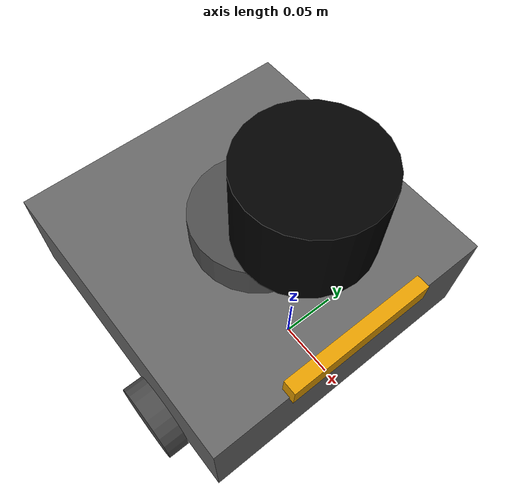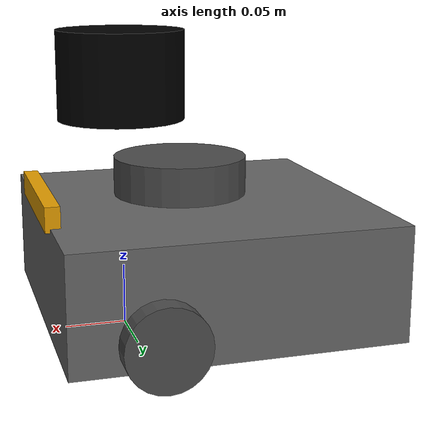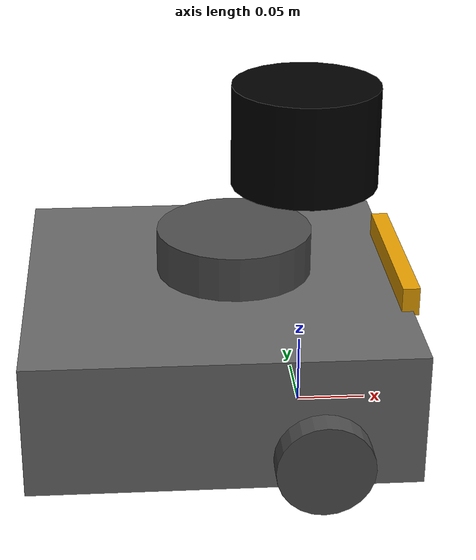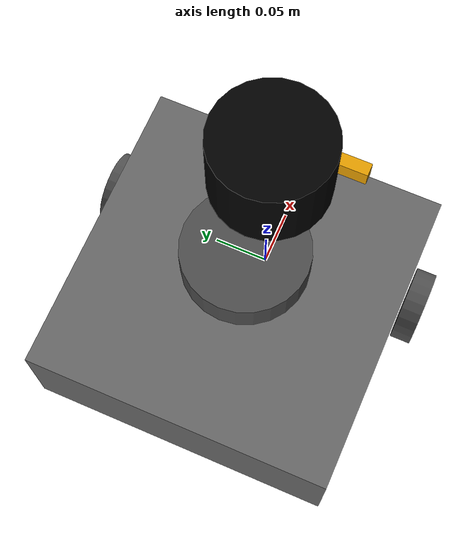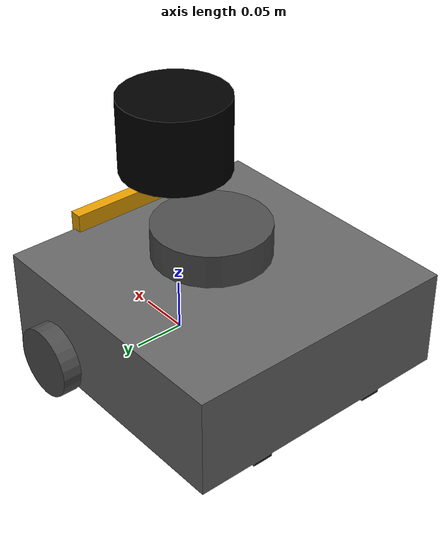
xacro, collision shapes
<?xml version="1.0" ?>
<robot name="turtlebot3_waffle_3d" xmlns:xacro="http://ros.org/wiki/xacro">

  <!-- Standard waffle body (links, wheels, 2D scan, camera, imu frames) -->
  <xacro:include filename="$(find turtlebot3_description)/urdf/turtlebot3_waffle.urdf"/>

  <!-- 3D LiDAR frame, mounted on top of base_link (matches model.sdf pose) -->
  <joint name="lidar_joint" type="fixed">
    <origin xyz="0 0 0.20" rpy="0 0 0"/>
    <parent link="base_link"/>
    <child link="lidar_link"/>
  </joint>

  <link name="lidar_link">
    <visual>
      <origin xyz="0 0 0" rpy="0 0 0"/>
      <geometry>
        <cylinder radius="0.0516" length="0.0717"/>
      </geometry>
      <material name="black"/>
    </visual>
    <collision>
      <origin xyz="0 0 0" rpy="0 0 0"/>
      <geometry>
        <cylinder radius="0.0516" length="0.0717"/>
      </geometry>
    </collision>
    <inertial>
      <mass value="0.83"/>
      <origin xyz="0 0 0"/>
      <inertia ixx="0.001" ixy="0.0" ixz="0.0"
               iyy="0.001" iyz="0.0" izz="0.001"/>
    </inertial>
  </link>

  <!-- 360-degree RGB rig frame (matches model.sdf). The six face frames are
       published for calibration bookkeeping; omni_image_node.py stitches their
       images into one equirectangular image. -->
  <joint name="omni_camera_joint" type="fixed">
    <origin xyz="0 0 0.75" rpy="0 0 0"/>
    <parent link="base_link"/>
    <child link="omni_camera_link"/>
  </joint>

  <link name="omni_camera_link">
    <visual>
      <geometry>
        <sphere radius="0.045"/>
      </geometry>
      <material name="black"/>
    </visual>
    <inertial>
      <mass value="0.12"/>
      <origin xyz="0 0 0"/>
      <inertia ixx="0.0002" ixy="0" ixz="0"
               iyy="0.0002" iyz="0" izz="0.0002"/>
    </inertial>
  </link>

  <joint name="omni_front_joint" type="fixed">
    <origin xyz="0 0 0" rpy="0 0 0"/>
    <parent link="omni_camera_link"/>
    <child link="omni_front_frame"/>
  </joint>
  <link name="omni_front_frame"/>

  <joint name="omni_left_joint" type="fixed">
    <origin xyz="0 0 0" rpy="0 0 1.57079632679"/>
    <parent link="omni_camera_link"/>
    <child link="omni_left_frame"/>
  </joint>
  <link name="omni_left_frame"/>

  <joint name="omni_back_joint" type="fixed">
    <origin xyz="0 0 0" rpy="0 0 3.14159265359"/>
    <parent link="omni_camera_link"/>
    <child link="omni_back_frame"/>
  </joint>
  <link name="omni_back_frame"/>

  <joint name="omni_right_joint" type="fixed">
    <origin xyz="0 0 0" rpy="0 0 -1.57079632679"/>
    <parent link="omni_camera_link"/>
    <child link="omni_right_frame"/>
  </joint>
  <link name="omni_right_frame"/>

  <joint name="omni_up_joint" type="fixed">
    <origin xyz="0 0 0" rpy="0 -1.57079632679 0"/>
    <parent link="omni_camera_link"/>
    <child link="omni_up_frame"/>
  </joint>
  <link name="omni_up_frame"/>

  <joint name="omni_down_joint" type="fixed">
    <origin xyz="0 0 0" rpy="0 1.57079632679 0"/>
    <parent link="omni_camera_link"/>
    <child link="omni_down_frame"/>
  </joint>
  <link name="omni_down_frame"/>

</robot>

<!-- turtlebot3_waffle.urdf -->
<!-- |    This document was autogenerated by xacro from urdf/turtlebot3_waffle.urdf.xacro | -->
<!-- |    EDITING THIS FILE BY HAND IS NOT RECOMMENDED                                 | -->
<robot name="turtlebot3_waffle">
  <!-- Init colour -->
  <material name="black">
    <color rgba="0.0 0.0 0.0 1.0"/>
  </material>
  <material name="dark">
    <color rgba="0.3 0.3 0.3 1.0"/>
  </material>
  <material name="light_black">
    <color rgba="0.4 0.4 0.4 1.0"/>
  </material>
  <material name="blue">
    <color rgba="0.0 0.0 0.8 1.0"/>
  </material>
  <material name="green">
    <color rgba="0.0 0.8 0.0 1.0"/>
  </material>
  <material name="grey">
    <color rgba="0.5 0.5 0.5 1.0"/>
  </material>
  <material name="orange">
    <color rgba="1.0 0.4235294117647059 0.0392156862745098 1.0"/>
  </material>
  <material name="brown">
    <color rgba="0.8705882352941177 0.8117647058823529 0.7647058823529411 1.0"/>
  </material>
  <material name="red">
    <color rgba="0.8 0.0 0.0 1.0"/>
  </material>
  <material name="white">
    <color rgba="1.0 1.0 1.0 1.0"/>
  </material>
  <gazebo reference="base_link">
    <material>Gazebo/DarkGrey</material>
  </gazebo>
  <gazebo reference="wheel_left_link">
    <mu1>0.1</mu1>
    <mu2>0.1</mu2>
    <kp>500000.0</kp>
    <kd>10.0</kd>
    <minDepth>0.001</minDepth>
    <maxVel>0.1</maxVel>
    <fdir1>1 0 0</fdir1>
    <material>Gazebo/FlatBlack</material>
  </gazebo>
  <gazebo reference="wheel_right_link">
    <mu1>0.1</mu1>
    <mu2>0.1</mu2>
    <kp>500000.0</kp>
    <kd>10.0</kd>
    <minDepth>0.001</minDepth>
    <maxVel>0.1</maxVel>
    <fdir1>1 0 0</fdir1>
    <material>Gazebo/FlatBlack</material>
  </gazebo>
  <gazebo reference="caster_back_right_link">
    <mu1>0.1</mu1>
    <mu2>0.1</mu2>
    <kp>1000000.0</kp>
    <kd>100.0</kd>
    <minDepth>0.001</minDepth>
    <maxVel>1.0</maxVel>
    <material>Gazebo/FlatBlack</material>
  </gazebo>
  <gazebo reference="caster_back_left_link">
    <mu1>0.1</mu1>
    <mu2>0.1</mu2>
    <kp>1000000.0</kp>
    <kd>100.0</kd>
    <minDepth>0.001</minDepth>
    <maxVel>1.0</maxVel>
    <material>Gazebo/FlatBlack</material>
  </gazebo>
  <gazebo reference="imu_link">
    <sensor name="imu" type="imu">
      <always_on>true</always_on>
      <visualize>false</visualize>
    </sensor>
    <material>Gazebo/Grey</material>
  </gazebo>
  <gazebo>
    <plugin filename="libgazebo_ros_diff_drive.so" name="turtlebot3_waffle_controller">
      <commandTopic>cmd_vel</commandTopic>
      <odometryTopic>odom</odometryTopic>
      <odometryFrame>odom</odometryFrame>
      <odometrySource>world</odometrySource>
      <publishOdomTF>true</publishOdomTF>
      <robotBaseFrame>base_footprint</robotBaseFrame>
      <publishWheelTF>false</publishWheelTF>
      <publishTf>true</publishTf>
      <publishWheelJointState>true</publishWheelJointState>
      <legacyMode>false</legacyMode>
      <updateRate>30</updateRate>
      <leftJoint>wheel_left_joint</leftJoint>
      <rightJoint>wheel_right_joint</rightJoint>
      <wheelSeparation>0.287</wheelSeparation>
      <wheelDiameter>0.066</wheelDiameter>
      <wheelAcceleration>1</wheelAcceleration>
      <wheelTorque>10</wheelTorque>
      <rosDebugLevel>na</rosDebugLevel>
    </plugin>
  </gazebo>
  <gazebo>
    <plugin filename="libgazebo_ros_imu.so" name="imu_plugin">
      <alwaysOn>true</alwaysOn>
      <bodyName>imu_link</bodyName>
      <frameName>imu_link</frameName>
      <topicName>imu</topicName>
      <serviceName>imu_service</serviceName>
      <gaussianNoise>0.0</gaussianNoise>
      <updateRate>0</updateRate>
      <imu>
        <noise>
          <type>gaussian</type>
          <rate>
            <mean>0.0</mean>
            <stddev>2e-4</stddev>
            <bias_mean>0.0000075</bias_mean>
            <bias_stddev>0.0000008</bias_stddev>
          </rate>
          <accel>
            <mean>0.0</mean>
            <stddev>1.7e-2</stddev>
            <bias_mean>0.1</bias_mean>
            <bias_stddev>0.001</bias_stddev>
          </accel>
        </noise>
      </imu>
    </plugin>
  </gazebo>
  <gazebo reference="base_scan">
    <material>Gazebo/FlatBlack</material>
    <sensor name="lds_lfcd_sensor" type="ray">
      <pose>0 0 0 0 0 0</pose>
      <visualize>false</visualize>
      <update_rate>5</update_rate>
      <ray>
        <scan>
          <horizontal>
            <samples>360</samples>
            <resolution>1</resolution>
            <min_angle>0.0</min_angle>
            <max_angle>6.28319</max_angle>
          </horizontal>
        </scan>
        <range>
          <min>0.120</min>
          <max>3.5</max>
          <resolution>0.015</resolution>
        </range>
        <noise>
          <type>gaussian</type>
          <mean>0.0</mean>
          <stddev>0.01</stddev>
        </noise>
      </ray>
      <plugin filename="libgazebo_ros_laser.so" name="gazebo_ros_lds_lfcd_controller">
        <topicName>scan</topicName>
        <frameName>base_scan</frameName>
      </plugin>
    </sensor>
  </gazebo>
  <gazebo reference="camera_rgb_frame">
    <sensor name="realsense_R200" type="depth">
      <always_on>true</always_on>
      <visualize>false</visualize>
      <camera>
        <horizontal_fov>1.3439</horizontal_fov>
        <image>
          <width>1920</width>
          <height>1080</height>
          <format>R8G8B8</format>
        </image>
        <depth_camera/>
        <clip>
          <near>0.03</near>
          <far>100</far>
        </clip>
      </camera>
      <plugin filename="libgazebo_ros_openni_kinect.so" name="camera_controller">
        <baseline>0.2</baseline>
        <alwaysOn>true</alwaysOn>
        <updateRate>30.0</updateRate>
        <cameraName>camera</cameraName>
        <frameName>camera_rgb_optical_frame</frameName>
        <imageTopicName>rgb/image_raw</imageTopicName>
        <depthImageTopicName>depth/image_raw</depthImageTopicName>
        <pointCloudTopicName>depth/points</pointCloudTopicName>
        <cameraInfoTopicName>rgb/camera_info</cameraInfoTopicName>
        <depthImageCameraInfoTopicName>depth/camera_info</depthImageCameraInfoTopicName>
        <pointCloudCutoff>0.4</pointCloudCutoff>
        <hackBaseline>0.07</hackBaseline>
        <distortionK1>0.0</distortionK1>
        <distortionK2>0.0</distortionK2>
        <distortionK3>0.0</distortionK3>
        <distortionT1>0.0</distortionT1>
        <distortionT2>0.0</distortionT2>
        <CxPrime>0.0</CxPrime>
        <Cx>0.0</Cx>
        <Cy>0.0</Cy>
        <focalLength>0</focalLength>
        <hackBaseline>0</hackBaseline>
      </plugin>
    </sensor>
  </gazebo>
  <link name="base_footprint"/>
  <joint name="base_joint" type="fixed">
    <parent link="base_footprint"/>
    <child link="base_link"/>
    <origin rpy="0 0 0" xyz="0 0 0.010"/>
  </joint>
  <link name="base_link">
    <visual>
      <origin rpy="0 0 0" xyz="-0.064 0 0.0"/>
      <geometry>
        <mesh filename="package://turtlebot3_description/meshes/bases/waffle_base.stl" scale="0.001 0.001 0.001"/>
      </geometry>
      <material name="light_black"/>
    </visual>
    <collision>
      <origin rpy="0 0 0" xyz="-0.064 0 0.047"/>
      <geometry>
        <box size="0.266 0.266 0.094"/>
      </geometry>
    </collision>
    <inertial>
      <origin rpy="0 0 0" xyz="0 0 0"/>
      <mass value="1.3729096e+00"/>
      <inertia ixx="8.7002718e-03" ixy="-4.7576583e-05" ixz="1.1160499e-04" iyy="8.6195418e-03" iyz="-3.5422299e-06" izz="1.4612727e-02"/>
    </inertial>
  </link>
  <joint name="wheel_left_joint" type="continuous">
    <parent link="base_link"/>
    <child link="wheel_left_link"/>
    <origin rpy="-1.57 0 0" xyz="0.0 0.144 0.023"/>
    <axis xyz="0 0 1"/>
  </joint>
  <link name="wheel_left_link">
    <visual>
      <origin rpy="1.57 0 0" xyz="0 0 0"/>
      <geometry>
        <mesh filename="package://turtlebot3_description/meshes/wheels/left_tire.stl" scale="0.001 0.001 0.001"/>
      </geometry>
      <material name="dark"/>
    </visual>
    <collision>
      <origin rpy="0 0 0" xyz="0 0 0"/>
      <geometry>
        <cylinder length="0.018" radius="0.033"/>
      </geometry>
    </collision>
    <inertial>
      <origin xyz="0 0 0"/>
      <mass value="2.8498940e-02"/>
      <inertia ixx="1.1175580e-05" ixy="-4.2369783e-11" ixz="-5.9381719e-09" iyy="1.1192413e-05" iyz="-1.4400107e-11" izz="2.0712558e-05"/>
    </inertial>
  </link>
  <joint name="wheel_right_joint" type="continuous">
    <parent link="base_link"/>
    <child link="wheel_right_link"/>
    <origin rpy="-1.57 0 0" xyz="0.0 -0.144 0.023"/>
    <axis xyz="0 0 1"/>
  </joint>
  <link name="wheel_right_link">
    <visual>
      <origin rpy="1.57 0 0" xyz="0 0 0"/>
      <geometry>
        <mesh filename="package://turtlebot3_description/meshes/wheels/right_tire.stl" scale="0.001 0.001 0.001"/>
      </geometry>
      <material name="dark"/>
    </visual>
    <collision>
      <origin rpy="0 0 0" xyz="0 0 0"/>
      <geometry>
        <cylinder length="0.018" radius="0.033"/>
      </geometry>
    </collision>
    <inertial>
      <origin xyz="0 0 0"/>
      <mass value="2.8498940e-02"/>
      <inertia ixx="1.1175580e-05" ixy="-4.2369783e-11" ixz="-5.9381719e-09" iyy="1.1192413e-05" iyz="-1.4400107e-11" izz="2.0712558e-05"/>
    </inertial>
  </link>
  <joint name="caster_back_right_joint" type="fixed">
    <parent link="base_link"/>
    <child link="caster_back_right_link"/>
    <origin rpy="-1.57 0 0" xyz="-0.177 -0.064 -0.004"/>
  </joint>
  <link name="caster_back_right_link">
    <collision>
      <origin rpy="0 0 0" xyz="0 0.001 0"/>
      <geometry>
        <box size="0.030 0.009 0.020"/>
      </geometry>
    </collision>
    <inertial>
      <origin xyz="0 0 0"/>
      <mass value="0.005"/>
      <inertia ixx="0.001" ixy="0.0" ixz="0.0" iyy="0.001" iyz="0.0" izz="0.001"/>
    </inertial>
  </link>
  <joint name="caster_back_left_joint" type="fixed">
    <parent link="base_link"/>
    <child link="caster_back_left_link"/>
    <origin rpy="-1.57 0 0" xyz="-0.177 0.064 -0.004"/>
  </joint>
  <link name="caster_back_left_link">
    <collision>
      <origin rpy="0 0 0" xyz="0 0.001 0"/>
      <geometry>
        <box size="0.030 0.009 0.020"/>
      </geometry>
    </collision>
    <inertial>
      <origin xyz="0 0 0"/>
      <mass value="0.005"/>
      <inertia ixx="0.001" ixy="0.0" ixz="0.0" iyy="0.001" iyz="0.0" izz="0.001"/>
    </inertial>
  </link>
  <joint name="imu_joint" type="fixed">
    <parent link="base_link"/>
    <child link="imu_link"/>
    <origin rpy="0 0 0" xyz="0.0 0 0.068"/>
  </joint>
  <link name="imu_link"/>
  <joint name="scan_joint" type="fixed">
    <parent link="base_link"/>
    <child link="base_scan"/>
    <origin rpy="0 0 0" xyz="-0.064 0 0.122"/>
  </joint>
  <link name="base_scan">
    <visual>
      <origin rpy="0 0 0" xyz="0 0 0"/>
      <geometry>
        <mesh filename="package://turtlebot3_description/meshes/sensors/lds.stl" scale="0.001 0.001 0.001"/>
      </geometry>
      <material name="dark"/>
    </visual>
    <collision>
      <origin rpy="0 0 0" xyz="0.015 0 -0.0065"/>
      <geometry>
        <cylinder length="0.0315" radius="0.055"/>
      </geometry>
    </collision>
    <inertial>
      <mass value="0.114"/>
      <origin xyz="0 0 0"/>
      <inertia ixx="0.001" ixy="0.0" ixz="0.0" iyy="0.001" iyz="0.0" izz="0.001"/>
    </inertial>
  </link>
  <joint name="camera_joint" type="fixed">
    <origin rpy="0 0 0" xyz="0.064 -0.065 0.094"/>
    <parent link="base_link"/>
    <child link="camera_link"/>
  </joint>
  <link name="camera_link">
    <visual>
      <origin rpy="1.57 0 1.57" xyz="0 0 0"/>
      <geometry>
        <mesh filename="package://turtlebot3_description/meshes/sensors/r200.dae"/>
      </geometry>
    </visual>
    <collision>
      <origin rpy="0 0 0" xyz="0.003 0.065 0.007"/>
      <geometry>
        <box size="0.012 0.132 0.020"/>
      </geometry>
    </collision>
    <!-- This inertial field needs doesn't contain reliable data!! -->
  </link>
  <joint name="camera_rgb_joint" type="fixed">
    <origin rpy="0 0 0" xyz="0.005 0.018 0.013"/>
    <parent link="camera_link"/>
    <child link="camera_rgb_frame"/>
  </joint>
  <link name="camera_rgb_frame"/>
  <joint name="camera_rgb_optical_joint" type="fixed">
    <origin rpy="-1.57 0 -1.57" xyz="0 0 0"/>
    <parent link="camera_rgb_frame"/>
    <child link="camera_rgb_optical_frame"/>
  </joint>
  <link name="camera_rgb_optical_frame"/>
  <joint name="camera_depth_joint" type="fixed">
    <origin rpy="0 0 0" xyz="0.005 0.027999999999999997 0.013"/>
    <parent link="camera_link"/>
    <child link="camera_depth_frame"/>
  </joint>
  <link name="camera_depth_frame"/>
  <joint name="camera_depth_optical_joint" type="fixed">
    <origin rpy="-1.57 0 -1.57" xyz="0 0 0"/>
    <parent link="camera_depth_frame"/>
    <child link="camera_depth_optical_frame"/>
  </joint>
  <link name="camera_depth_optical_frame"/>
</robot>
